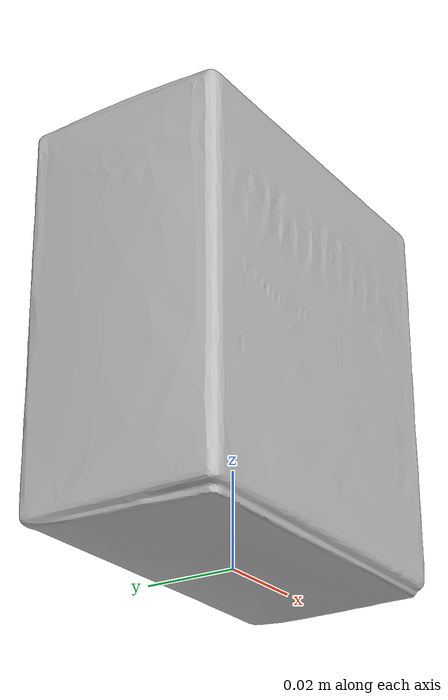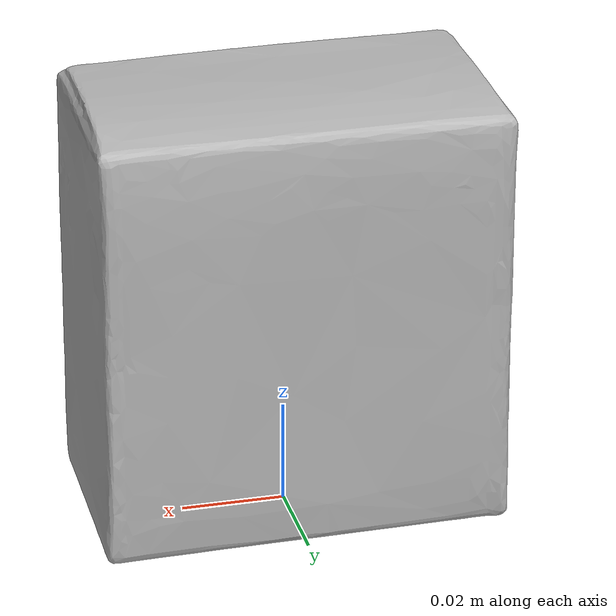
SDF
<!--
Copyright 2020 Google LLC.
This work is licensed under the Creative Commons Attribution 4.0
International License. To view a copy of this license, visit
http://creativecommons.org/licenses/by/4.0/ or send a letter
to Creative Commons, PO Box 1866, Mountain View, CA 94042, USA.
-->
<?xml version="1.0" ?>
<sdf version="1.6">
  <model name="Phillips_Stool_Softener_Liquid_Gels_30_liquid_gels">
    <link name="link_0">
      <inertial>
        <pose>0 0 0.03 0 0 0</pose>
        <mass>0.0175</mass>
        <inertia>
          <ixx>9.749231770833334e-06</ixx>
          <ixy>0</ixy>
          <ixz>0</ixz>
          <iyy>9.749231770833334e-06</iyy>
          <iyz>0</iyz>
          <izz>8.317968750000001e-07</izz>
        </inertia>
      </inertial>
      <visual name="visual">
        <geometry>
          <mesh>
            <uri>model://Phillips_Stool_Softener_Liquid_Gels_30_liquid_gels/meshes/model.obj</uri>
          </mesh>
        </geometry>
      </visual>
      <collision name="collision_0">
        <geometry>
          <mesh>
            <uri>model://Phillips_Stool_Softener_Liquid_Gels_30_liquid_gels/meshes/model.obj</uri>
          </mesh>
        </geometry>
        <surface>
          <contact>
            <ode>
              <kp>100000</kp>
              <kd>100</kd>
              <max_vel>100.0</max_vel>
              <min_depth>0.001</min_depth>
            </ode>
          </contact>
          <friction>
            <ode>
              <mu>1</mu>
              <mu2>1</mu2>
            </ode>
          </friction>
        </surface>
      </collision>
    </link>
  </model>
</sdf>
